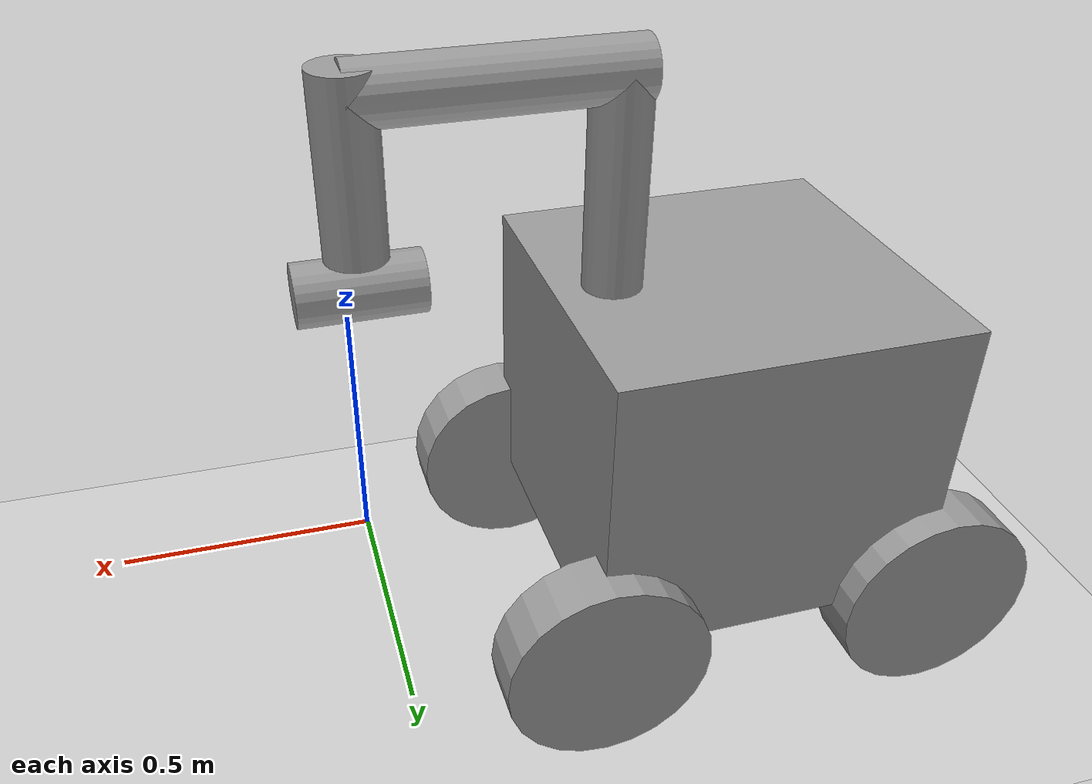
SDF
<sdf version="1.7">
 <world name="default">
  <light name="sun" type="directional">
   <pose>0 0 10 0 -0 0</pose>
   <diffuse>0.8 0.8 0.8 1</diffuse>
   <specular>0.2 0.2 0.2 1</specular>
   <attenuation>
    <range>1000</range>
    <constant>0.9</constant>
    <linear>0.01</linear>
    <quadratic>0.001</quadratic>
   </attenuation>
   <direction>-0.5 0.1 -0.9</direction>
   <spot><inner_angle>0</inner_angle><outer_angle>0</outer_angle><falloff>0</falloff></spot>
  </light>
  <model name="ground_plane">
   <static>1</static>
   <link name="link">
    <collision name="collision">
     <geometry><plane><normal>0 0 1</normal><size>100 100</size></plane></geometry>
     <surface>
      <contact><collide_bitmask>65535</collide_bitmask></contact>
      <friction><ode><mu>100</mu><mu2>50</mu2></ode></friction>
     </surface>
    </collision>
    <visual name="visual">
     <cast_shadows>0</cast_shadows>
     <geometry><plane><normal>0 0 1</normal><size>100 100</size></plane></geometry>
     <material>
      <script><uri>file://media/materials/scripts/gazebo.material</uri><name>Gazebo/Grey</name></script>
     </material>
    </visual>
   </link>
  </model>
  <gravity>0 0 -9.8</gravity>
  <magnetic_field>6e-06 2.3e-05 -4.2e-05</magnetic_field>
  <atmosphere type="adiabatic"/>
  <physics type="ode">
   <max_step_size>0.001</max_step_size>
   <real_time_factor>1</real_time_factor>
   <real_time_update_rate>1000</real_time_update_rate>
  </physics>
  <scene><ambient>0.4 0.4 0.4 1</ambient><background>0.7 0.7 0.7 1</background><shadows>1</shadows></scene>
  <audio><device>default</device></audio>
  <spherical_coordinates>
   <surface_model>EARTH_WGS84</surface_model>
   <latitude_deg>0</latitude_deg>
   <longitude_deg>0</longitude_deg>
   <elevation>0</elevation>
   <heading_deg>0</heading_deg>
  </spherical_coordinates>
  <model name="assgn1_model">
   <link name="link_0">
    <inertial>
     <mass>1</mass>
     <inertia>
      <ixx>0.166667</ixx>
      <ixy>0</ixy>
      <ixz>0</ixz>
      <iyy>0.166667</iyy>
      <iyz>0</iyz>
      <izz>0.166667</izz>
     </inertia>
    </inertial>
    <pose>0.421993 -0.138757 0.327505 0 -0 0</pose>
    <visual name="visual">
     <geometry><box><size>0.6 0.6 0.52</size></box></geometry>
     <material>
      <lighting>1</lighting>
      <script><uri>file://media/materials/scripts/gazebo.material</uri><name>Gazebo/Grey</name></script>
      <shader type="pixel"><normal_map>__default__</normal_map></shader>
      <ambient>0.3 0.3 0.3 1</ambient>
      <diffuse>0.7 0.7 0.7 1</diffuse>
      <specular>0.01 0.01 0.01 1</specular>
      <emissive>0 0 0 1</emissive>
     </material>
    </visual>
    <collision name="collision">
     <geometry><box><size>0.6 0.6 0.52</size></box></geometry>
     <surface>
      <friction>
       <ode><mu>1</mu><mu2>1</mu2><fdir1>0 0 0</fdir1><slip1>0</slip1><slip2>0</slip2></ode>
       <torsional>
        <coefficient>1</coefficient>
        <patch_radius>0</patch_radius>
        <surface_radius>0</surface_radius>
        <use_patch_radius>1</use_patch_radius>
        <ode><slip>0</slip></ode>
       </torsional>
      </friction>
      <bounce><restitution_coefficient>0</restitution_coefficient><threshold>1e+06</threshold></bounce>
      <contact>
       <collide_without_contact>0</collide_without_contact>
       <collide_without_contact_bitmask>1</collide_without_contact_bitmask>
       <collide_bitmask>1</collide_bitmask>
       <ode>
        <soft_cfm>0</soft_cfm>
        <soft_erp>0.2</soft_erp>
        <kp>1e+13</kp>
        <kd>1</kd>
        <max_vel>0.01</max_vel>
        <min_depth>0</min_depth>
       </ode>
       <bullet>
        <split_impulse>1</split_impulse>
        <split_impulse_penetration_threshold>-0.01</split_impulse_penetration_threshold>
        <soft_cfm>0</soft_cfm>
        <soft_erp>0.2</soft_erp>
        <kp>1e+13</kp>
        <kd>1</kd>
       </bullet>
      </contact>
     </surface>
    </collision>
   </link>
   <link name="link_1">
    <inertial>
     <mass>1</mass>
     <inertia><ixx>0.145833</ixx><ixy>0</ixy><ixz>0</ixz><iyy>0.145833</iyy><iyz>0</iyz><izz>0.125</izz></inertia>
    </inertial>
    <pose>0.721993 0.161243 0.067505 1.571 -0 0</pose>
    <visual name="visual">
     <geometry><cylinder><radius>0.175</radius><length>0.1</length></cylinder></geometry>
     <material>
      <lighting>1</lighting>
      <script><uri>file://media/materials/scripts/gazebo.material</uri><name>Gazebo/Grey</name></script>
      <shader type="pixel"><normal_map>__default__</normal_map></shader>
      <ambient>0.3 0.3 0.3 1</ambient>
      <diffuse>0.7 0.7 0.7 1</diffuse>
      <specular>0.01 0.01 0.01 1</specular>
      <emissive>0 0 0 1</emissive>
     </material>
    </visual>
    <collision name="collision">
     <geometry><cylinder><radius>0.175</radius><length>0.1</length></cylinder></geometry>
     <surface>
      <friction>
       <ode><mu>1</mu><mu2>1</mu2><fdir1>0 0 0</fdir1><slip1>0</slip1><slip2>0</slip2></ode>
       <torsional>
        <coefficient>1</coefficient>
        <patch_radius>0</patch_radius>
        <surface_radius>0</surface_radius>
        <use_patch_radius>1</use_patch_radius>
        <ode><slip>0</slip></ode>
       </torsional>
      </friction>
      <bounce><restitution_coefficient>0</restitution_coefficient><threshold>1e+06</threshold></bounce>
      <contact>
       <collide_without_contact>0</collide_without_contact>
       <collide_without_contact_bitmask>1</collide_without_contact_bitmask>
       <collide_bitmask>1</collide_bitmask>
       <ode>
        <soft_cfm>0</soft_cfm>
        <soft_erp>0.2</soft_erp>
        <kp>1e+13</kp>
        <kd>1</kd>
        <max_vel>0.01</max_vel>
        <min_depth>0</min_depth>
       </ode>
       <bullet>
        <split_impulse>1</split_impulse>
        <split_impulse_penetration_threshold>-0.01</split_impulse_penetration_threshold>
        <soft_cfm>0</soft_cfm>
        <soft_erp>0.2</soft_erp>
        <kp>1e+13</kp>
        <kd>1</kd>
       </bullet>
      </contact>
     </surface>
    </collision>
   </link>
   <link name="link_1_clone">
    <inertial>
     <mass>1</mass>
     <inertia><ixx>0.145833</ixx><ixy>0</ixy><ixz>0</ixz><iyy>0.145833</iyy><iyz>0</iyz><izz>0.125</izz></inertia>
    </inertial>
    <pose>0.121993 0.161243 0.067505 1.571 -0 0</pose>
    <visual name="visual">
     <geometry><cylinder><radius>0.175</radius><length>0.1</length></cylinder></geometry>
     <material>
      <lighting>1</lighting>
      <script><uri>file://media/materials/scripts/gazebo.material</uri><name>Gazebo/Grey</name></script>
      <shader type="pixel"><normal_map>__default__</normal_map></shader>
      <ambient>0.3 0.3 0.3 1</ambient>
      <diffuse>0.7 0.7 0.7 1</diffuse>
      <specular>0.01 0.01 0.01 1</specular>
      <emissive>0 0 0 1</emissive>
     </material>
    </visual>
    <collision name="collision">
     <geometry><cylinder><radius>0.175</radius><length>0.1</length></cylinder></geometry>
     <surface>
      <friction>
       <ode><mu>1</mu><mu2>1</mu2><fdir1>0 0 0</fdir1><slip1>0</slip1><slip2>0</slip2></ode>
       <torsional>
        <coefficient>1</coefficient>
        <patch_radius>0</patch_radius>
        <surface_radius>0</surface_radius>
        <use_patch_radius>1</use_patch_radius>
        <ode><slip>0</slip></ode>
       </torsional>
      </friction>
      <bounce><restitution_coefficient>0</restitution_coefficient><threshold>1e+06</threshold></bounce>
      <contact>
       <collide_without_contact>0</collide_without_contact>
       <collide_without_contact_bitmask>1</collide_without_contact_bitmask>
       <collide_bitmask>1</collide_bitmask>
       <ode>
        <soft_cfm>0</soft_cfm>
        <soft_erp>0.2</soft_erp>
        <kp>1e+13</kp>
        <kd>1</kd>
        <max_vel>0.01</max_vel>
        <min_depth>0</min_depth>
       </ode>
       <bullet>
        <split_impulse>1</split_impulse>
        <split_impulse_penetration_threshold>-0.01</split_impulse_penetration_threshold>
        <soft_cfm>0</soft_cfm>
        <soft_erp>0.2</soft_erp>
        <kp>1e+13</kp>
        <kd>1</kd>
       </bullet>
      </contact>
     </surface>
    </collision>
   </link>
   <link name="link_1_clone_0">
    <inertial>
     <mass>1</mass>
     <inertia><ixx>0.145833</ixx><ixy>0</ixy><ixz>0</ixz><iyy>0.145833</iyy><iyz>0</iyz><izz>0.125</izz></inertia>
    </inertial>
    <pose>0.721993 -0.438757 0.067505 1.571 -0 0</pose>
    <visual name="visual">
     <geometry><cylinder><radius>0.175</radius><length>0.1</length></cylinder></geometry>
     <material>
      <lighting>1</lighting>
      <script><uri>file://media/materials/scripts/gazebo.material</uri><name>Gazebo/Grey</name></script>
      <shader type="pixel"><normal_map>__default__</normal_map></shader>
      <ambient>0.3 0.3 0.3 1</ambient>
      <diffuse>0.7 0.7 0.7 1</diffuse>
      <specular>0.01 0.01 0.01 1</specular>
      <emissive>0 0 0 1</emissive>
     </material>
    </visual>
    <collision name="collision">
     <geometry><cylinder><radius>0.175</radius><length>0.1</length></cylinder></geometry>
     <surface>
      <friction>
       <ode><mu>1</mu><mu2>1</mu2><fdir1>0 0 0</fdir1><slip1>0</slip1><slip2>0</slip2></ode>
       <torsional>
        <coefficient>1</coefficient>
        <patch_radius>0</patch_radius>
        <surface_radius>0</surface_radius>
        <use_patch_radius>1</use_patch_radius>
        <ode><slip>0</slip></ode>
       </torsional>
      </friction>
      <bounce><restitution_coefficient>0</restitution_coefficient><threshold>1e+06</threshold></bounce>
      <contact>
       <collide_without_contact>0</collide_without_contact>
       <collide_without_contact_bitmask>1</collide_without_contact_bitmask>
       <collide_bitmask>1</collide_bitmask>
       <ode>
        <soft_cfm>0</soft_cfm>
        <soft_erp>0.2</soft_erp>
        <kp>1e+13</kp>
        <kd>1</kd>
        <max_vel>0.01</max_vel>
        <min_depth>0</min_depth>
       </ode>
       <bullet>
        <split_impulse>1</split_impulse>
        <split_impulse_penetration_threshold>-0.01</split_impulse_penetration_threshold>
        <soft_cfm>0</soft_cfm>
        <soft_erp>0.2</soft_erp>
        <kp>1e+13</kp>
        <kd>1</kd>
       </bullet>
      </contact>
     </surface>
    </collision>
   </link>
   <link name="link_1_clone_1">
    <inertial>
     <mass>1</mass>
     <inertia><ixx>0.145833</ixx><ixy>0</ixy><ixz>0</ixz><iyy>0.145833</iyy><iyz>0</iyz><izz>0.125</izz></inertia>
    </inertial>
    <pose>0.121993 -0.438757 0.067505 1.571 -0 0</pose>
    <visual name="visual">
     <geometry><cylinder><radius>0.175</radius><length>0.1</length></cylinder></geometry>
     <material>
      <lighting>1</lighting>
      <script><uri>file://media/materials/scripts/gazebo.material</uri><name>Gazebo/Grey</name></script>
      <shader type="pixel"><normal_map>__default__</normal_map></shader>
      <ambient>0.3 0.3 0.3 1</ambient>
      <diffuse>0.7 0.7 0.7 1</diffuse>
      <specular>0.01 0.01 0.01 1</specular>
      <emissive>0 0 0 1</emissive>
     </material>
    </visual>
    <collision name="collision">
     <geometry><cylinder><radius>0.175</radius><length>0.1</length></cylinder></geometry>
     <surface>
      <friction>
       <ode><mu>1</mu><mu2>1</mu2><fdir1>0 0 0</fdir1><slip1>0</slip1><slip2>0</slip2></ode>
       <torsional>
        <coefficient>1</coefficient>
        <patch_radius>0</patch_radius>
        <surface_radius>0</surface_radius>
        <use_patch_radius>1</use_patch_radius>
        <ode><slip>0</slip></ode>
       </torsional>
      </friction>
      <bounce><restitution_coefficient>0</restitution_coefficient><threshold>1e+06</threshold></bounce>
      <contact>
       <collide_without_contact>0</collide_without_contact>
       <collide_without_contact_bitmask>1</collide_without_contact_bitmask>
       <collide_bitmask>1</collide_bitmask>
       <ode>
        <soft_cfm>0</soft_cfm>
        <soft_erp>0.2</soft_erp>
        <kp>1e+13</kp>
        <kd>1</kd>
        <max_vel>0.01</max_vel>
        <min_depth>0</min_depth>
       </ode>
       <bullet>
        <split_impulse>1</split_impulse>
        <split_impulse_penetration_threshold>-0.01</split_impulse_penetration_threshold>
        <soft_cfm>0</soft_cfm>
        <soft_erp>0.2</soft_erp>
        <kp>1e+13</kp>
        <kd>1</kd>
       </bullet>
      </contact>
     </surface>
    </collision>
   </link>
   <link name="link_2">
    <inertial>
     <mass>1</mass>
     <inertia><ixx>0.145833</ixx><ixy>0</ixy><ixz>0</ixz><iyy>0.145833</iyy><iyz>0</iyz><izz>0.125</izz></inertia>
    </inertial>
    <pose>0.621993 -0.138757 0.762505 0 -0 0</pose>
    <visual name="visual">
     <geometry><cylinder><radius>0.05</radius><length>0.35</length></cylinder></geometry>
     <material>
      <lighting>1</lighting>
      <script><uri>file://media/materials/scripts/gazebo.material</uri><name>Gazebo/Grey</name></script>
      <shader type="pixel"><normal_map>__default__</normal_map></shader>
      <ambient>0.3 0.3 0.3 1</ambient>
      <diffuse>0.7 0.7 0.7 1</diffuse>
      <specular>0.01 0.01 0.01 1</specular>
      <emissive>0 0 0 1</emissive>
     </material>
    </visual>
    <collision name="collision">
     <geometry><cylinder><radius>0.05</radius><length>0.35</length></cylinder></geometry>
     <surface>
      <friction>
       <ode><mu>1</mu><mu2>1</mu2><fdir1>0 0 0</fdir1><slip1>0</slip1><slip2>0</slip2></ode>
       <torsional>
        <coefficient>1</coefficient>
        <patch_radius>0</patch_radius>
        <surface_radius>0</surface_radius>
        <use_patch_radius>1</use_patch_radius>
        <ode><slip>0</slip></ode>
       </torsional>
      </friction>
      <bounce><restitution_coefficient>0</restitution_coefficient><threshold>1e+06</threshold></bounce>
      <contact>
       <collide_without_contact>0</collide_without_contact>
       <collide_without_contact_bitmask>1</collide_without_contact_bitmask>
       <collide_bitmask>1</collide_bitmask>
       <ode>
        <soft_cfm>0</soft_cfm>
        <soft_erp>0.2</soft_erp>
        <kp>1e+13</kp>
        <kd>1</kd>
        <max_vel>0.01</max_vel>
        <min_depth>0</min_depth>
       </ode>
       <bullet>
        <split_impulse>1</split_impulse>
        <split_impulse_penetration_threshold>-0.01</split_impulse_penetration_threshold>
        <soft_cfm>0</soft_cfm>
        <soft_erp>0.2</soft_erp>
        <kp>1e+13</kp>
        <kd>1</kd>
       </bullet>
      </contact>
     </surface>
    </collision>
   </link>
   <link name="link_3">
    <inertial>
     <mass>1</mass>
     <inertia><ixx>0.145833</ixx><ixy>0</ixy><ixz>0</ixz><iyy>0.145833</iyy><iyz>0</iyz><izz>0.125</izz></inertia>
    </inertial>
    <pose>0.806993 -0.138757 0.937505 -3.14159 1.57059 -3.14159</pose>
    <visual name="visual">
     <geometry><cylinder><radius>0.05</radius><length>0.45</length></cylinder></geometry>
     <material>
      <lighting>1</lighting>
      <script><uri>file://media/materials/scripts/gazebo.material</uri><name>Gazebo/Grey</name></script>
      <shader type="pixel"><normal_map>__default__</normal_map></shader>
      <ambient>0.3 0.3 0.3 1</ambient>
      <diffuse>0.7 0.7 0.7 1</diffuse>
      <specular>0.01 0.01 0.01 1</specular>
      <emissive>0 0 0 1</emissive>
     </material>
    </visual>
    <collision name="collision">
     <geometry><cylinder><radius>0.05</radius><length>0.45</length></cylinder></geometry>
     <surface>
      <friction>
       <ode><mu>1</mu><mu2>1</mu2><fdir1>0 0 0</fdir1><slip1>0</slip1><slip2>0</slip2></ode>
       <torsional>
        <coefficient>1</coefficient>
        <patch_radius>0</patch_radius>
        <surface_radius>0</surface_radius>
        <use_patch_radius>1</use_patch_radius>
        <ode><slip>0</slip></ode>
       </torsional>
      </friction>
      <bounce><restitution_coefficient>0</restitution_coefficient><threshold>1e+06</threshold></bounce>
      <contact>
       <collide_without_contact>0</collide_without_contact>
       <collide_without_contact_bitmask>1</collide_without_contact_bitmask>
       <collide_bitmask>1</collide_bitmask>
       <ode>
        <soft_cfm>0</soft_cfm>
        <soft_erp>0.2</soft_erp>
        <kp>1e+13</kp>
        <kd>1</kd>
        <max_vel>0.01</max_vel>
        <min_depth>0</min_depth>
       </ode>
       <bullet>
        <split_impulse>1</split_impulse>
        <split_impulse_penetration_threshold>-0.01</split_impulse_penetration_threshold>
        <soft_cfm>0</soft_cfm>
        <soft_erp>0.2</soft_erp>
        <kp>1e+13</kp>
        <kd>1</kd>
       </bullet>
      </contact>
     </surface>
    </collision>
   </link>
   <link name="link_4">
    <inertial>
     <mass>1</mass>
     <inertia><ixx>0.145833</ixx><ixy>0</ixy><ixz>0</ixz><iyy>0.145833</iyy><iyz>0</iyz><izz>0.125</izz></inertia>
    </inertial>
    <pose>1.02947 -0.138757 0.834959 -1e-06 -0 -0</pose>
    <visual name="visual">
     <geometry><cylinder><radius>0.05</radius><length>0.285</length></cylinder></geometry>
     <material>
      <lighting>1</lighting>
      <script><uri>file://media/materials/scripts/gazebo.material</uri><name>Gazebo/Grey</name></script>
      <shader type="pixel"><normal_map>__default__</normal_map></shader>
      <ambient>0.3 0.3 0.3 1</ambient>
      <diffuse>0.7 0.7 0.7 1</diffuse>
      <specular>0.01 0.01 0.01 1</specular>
      <emissive>0 0 0 1</emissive>
     </material>
    </visual>
    <collision name="collision">
     <geometry><cylinder><radius>0.05</radius><length>0.285</length></cylinder></geometry>
     <surface>
      <friction>
       <ode><mu>1</mu><mu2>1</mu2><fdir1>0 0 0</fdir1><slip1>0</slip1><slip2>0</slip2></ode>
       <torsional>
        <coefficient>1</coefficient>
        <patch_radius>0</patch_radius>
        <surface_radius>0</surface_radius>
        <use_patch_radius>1</use_patch_radius>
        <ode><slip>0</slip></ode>
       </torsional>
      </friction>
      <bounce><restitution_coefficient>0</restitution_coefficient><threshold>1e+06</threshold></bounce>
      <contact>
       <collide_without_contact>0</collide_without_contact>
       <collide_without_contact_bitmask>1</collide_without_contact_bitmask>
       <collide_bitmask>1</collide_bitmask>
       <ode>
        <soft_cfm>0</soft_cfm>
        <soft_erp>0.2</soft_erp>
        <kp>1e+13</kp>
        <kd>1</kd>
        <max_vel>0.01</max_vel>
        <min_depth>0</min_depth>
       </ode>
       <bullet>
        <split_impulse>1</split_impulse>
        <split_impulse_penetration_threshold>-0.01</split_impulse_penetration_threshold>
        <soft_cfm>0</soft_cfm>
        <soft_erp>0.2</soft_erp>
        <kp>1e+13</kp>
        <kd>1</kd>
       </bullet>
      </contact>
     </surface>
    </collision>
   </link>
   <link name="link_5">
    <inertial>
     <mass>1</mass>
     <inertia><ixx>0.145833</ixx><ixy>0</ixy><ixz>0</ixz><iyy>0.145833</iyy><iyz>0</iyz><izz>0.125</izz></inertia>
    </inertial>
    <pose>1.02947 -0.138758 0.642459 -3.13515 1.57059 -3.13515</pose>
    <visual name="visual">
     <geometry><cylinder><radius>0.05</radius><length>0.2</length></cylinder></geometry>
     <material>
      <lighting>1</lighting>
      <script><uri>file://media/materials/scripts/gazebo.material</uri><name>Gazebo/Grey</name></script>
      <shader type="pixel"><normal_map>__default__</normal_map></shader>
      <ambient>0.3 0.3 0.3 1</ambient>
      <diffuse>0.7 0.7 0.7 1</diffuse>
      <specular>0.01 0.01 0.01 1</specular>
      <emissive>0 0 0 1</emissive>
     </material>
    </visual>
    <collision name="collision">
     <geometry><cylinder><radius>0.05</radius><length>0.2</length></cylinder></geometry>
     <surface>
      <friction>
       <ode><mu>1</mu><mu2>1</mu2><fdir1>0 0 0</fdir1><slip1>0</slip1><slip2>0</slip2></ode>
       <torsional>
        <coefficient>1</coefficient>
        <patch_radius>0</patch_radius>
        <surface_radius>0</surface_radius>
        <use_patch_radius>1</use_patch_radius>
        <ode><slip>0</slip></ode>
       </torsional>
      </friction>
      <bounce><restitution_coefficient>0</restitution_coefficient><threshold>1e+06</threshold></bounce>
      <contact>
       <collide_without_contact>0</collide_without_contact>
       <collide_without_contact_bitmask>1</collide_without_contact_bitmask>
       <collide_bitmask>1</collide_bitmask>
       <ode>
        <soft_cfm>0</soft_cfm>
        <soft_erp>0.2</soft_erp>
        <kp>1e+13</kp>
        <kd>1</kd>
        <max_vel>0.01</max_vel>
        <min_depth>0</min_depth>
       </ode>
       <bullet>
        <split_impulse>1</split_impulse>
        <split_impulse_penetration_threshold>-0.01</split_impulse_penetration_threshold>
        <soft_cfm>0</soft_cfm>
        <soft_erp>0.2</soft_erp>
        <kp>1e+13</kp>
        <kd>1</kd>
       </bullet>
      </contact>
     </surface>
    </collision>
   </link>
   <joint name="link_0_JOINT_0" type="revolute">
    <parent>link_0</parent>
    <child>link_1</child>
    <axis>
     <xyz>0 0 -1</xyz>
     <limit>
      <lower>-1.79769e+308</lower>
      <upper>1.79769e+308</upper>
      <effort>-1</effort>
      <velocity>-1</velocity>
     </limit>
     <dynamics>
      <spring_reference>0</spring_reference>
      <spring_stiffness>0</spring_stiffness>
      <damping>0</damping>
      <friction>0</friction>
     </dynamics>
    </axis>
    <physics>
     <ode><limit><cfm>0</cfm><erp>0.2</erp></limit><suspension><cfm>0</cfm><erp>0.2</erp></suspension></ode>
    </physics>
   </joint>
   <joint name="link_0_JOINT_1" type="revolute">
    <parent>link_0</parent>
    <child>link_1_clone</child>
    <axis>
     <xyz>0 0 -1</xyz>
     <limit>
      <lower>-1.79769e+308</lower>
      <upper>1.79769e+308</upper>
      <effort>-1</effort>
      <velocity>-1</velocity>
     </limit>
     <dynamics>
      <spring_reference>0</spring_reference>
      <spring_stiffness>0</spring_stiffness>
      <damping>0</damping>
      <friction>0</friction>
     </dynamics>
    </axis>
    <physics>
     <ode><limit><cfm>0</cfm><erp>0.2</erp></limit><suspension><cfm>0</cfm><erp>0.2</erp></suspension></ode>
    </physics>
   </joint>
   <joint name="link_0_JOINT_2" type="revolute">
    <parent>link_0</parent>
    <child>link_1_clone_0</child>
    <axis>
     <xyz>0 0 -1</xyz>
     <limit>
      <lower>-1.79769e+308</lower>
      <upper>1.79769e+308</upper>
      <effort>-1</effort>
      <velocity>-1</velocity>
     </limit>
     <dynamics>
      <spring_reference>0</spring_reference>
      <spring_stiffness>0</spring_stiffness>
      <damping>0</damping>
      <friction>0</friction>
     </dynamics>
    </axis>
    <physics>
     <ode><limit><cfm>0</cfm><erp>0.2</erp></limit><suspension><cfm>0</cfm><erp>0.2</erp></suspension></ode>
    </physics>
   </joint>
   <joint name="link_0_JOINT_3" type="revolute">
    <parent>link_0</parent>
    <child>link_1_clone_1</child>
    <axis>
     <xyz>0 0 -1</xyz>
     <limit>
      <lower>-1.79769e+308</lower>
      <upper>1.79769e+308</upper>
      <effort>-1</effort>
      <velocity>-1</velocity>
     </limit>
     <dynamics>
      <spring_reference>0</spring_reference>
      <spring_stiffness>0</spring_stiffness>
      <damping>0</damping>
      <friction>0</friction>
     </dynamics>
    </axis>
    <physics>
     <ode><limit><cfm>0</cfm><erp>0.2</erp></limit><suspension><cfm>0</cfm><erp>0.2</erp></suspension></ode>
    </physics>
   </joint>
   <joint name="link_0_JOINT_4" type="revolute">
    <parent>link_0</parent>
    <child>link_2</child>
    <axis>
     <xyz>0 0 -1</xyz>
     <limit>
      <lower>-1.79769e+308</lower>
      <upper>1.79769e+308</upper>
      <effort>-1</effort>
      <velocity>-1</velocity>
     </limit>
     <dynamics>
      <spring_reference>0</spring_reference>
      <spring_stiffness>0</spring_stiffness>
      <damping>0</damping>
      <friction>0</friction>
     </dynamics>
    </axis>
    <physics>
     <ode><limit><cfm>0</cfm><erp>0.2</erp></limit><suspension><cfm>0</cfm><erp>0.2</erp></suspension></ode>
    </physics>
   </joint>
   <joint name="link_2_JOINT_5" type="fixed">
    <parent>link_2</parent>
    <child>link_3</child>
    <physics>
     <ode><limit><cfm>0</cfm><erp>0.2</erp></limit><suspension><cfm>0</cfm><erp>0.2</erp></suspension></ode>
    </physics>
   </joint>
   <joint name="link_3_JOINT_6" type="prismatic">
    <parent>link_3</parent>
    <child>link_4</child>
    <axis>
     <xyz>0 0 -1</xyz>
     <limit><lower>-0.1</lower><upper>0</upper><effort>-1</effort><velocity>-1</velocity></limit>
     <dynamics>
      <spring_reference>0</spring_reference>
      <spring_stiffness>0</spring_stiffness>
      <damping>0</damping>
      <friction>0</friction>
     </dynamics>
    </axis>
    <physics>
     <ode><limit><cfm>0</cfm><erp>0.2</erp></limit><suspension><cfm>0</cfm><erp>0.2</erp></suspension></ode>
    </physics>
   </joint>
   <joint name="link_4_JOINT_7" type="revolute">
    <parent>link_4</parent>
    <child>link_5</child>
    <axis>
     <xyz>1 0 0</xyz>
     <limit>
      <lower>-1.79769e+308</lower>
      <upper>1.79769e+308</upper>
      <effort>-1</effort>
      <velocity>-1</velocity>
     </limit>
     <dynamics>
      <spring_reference>0</spring_reference>
      <spring_stiffness>0</spring_stiffness>
      <damping>0</damping>
      <friction>0</friction>
     </dynamics>
    </axis>
    <physics>
     <ode><limit><cfm>0</cfm><erp>0.2</erp></limit><suspension><cfm>0</cfm><erp>0.2</erp></suspension></ode>
    </physics>
   </joint>
   <static>0</static>
   <pose>-1.01694 0.480728 0.108129 -0.003915 6e-06 0.012927</pose>
   <plugin filename="libignition-gazebo-diff-drive-system.so" name="ignition::gazebo::systems::DiffDrive">
    <left_joint>link_0_JOINT_0</left_joint>
    <right_joint>link_0_JOINT_2</right_joint>
    <wheel_separation>0.6</wheel_separation>
    <wheel_radius>0.175</wheel_radius>
    <odom_publish_frequency>1</odom_publish_frequency>
    <topic>cmd_vel</topic>
   </plugin>
  </model>
 </world>
</sdf>
